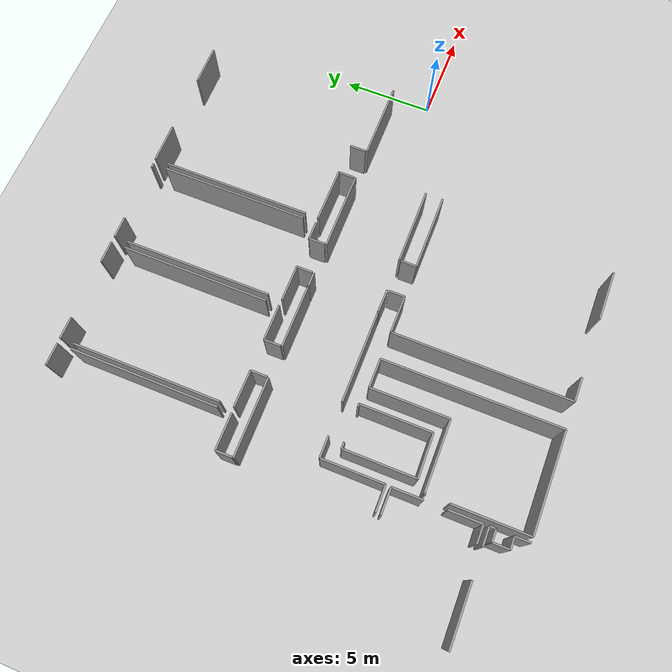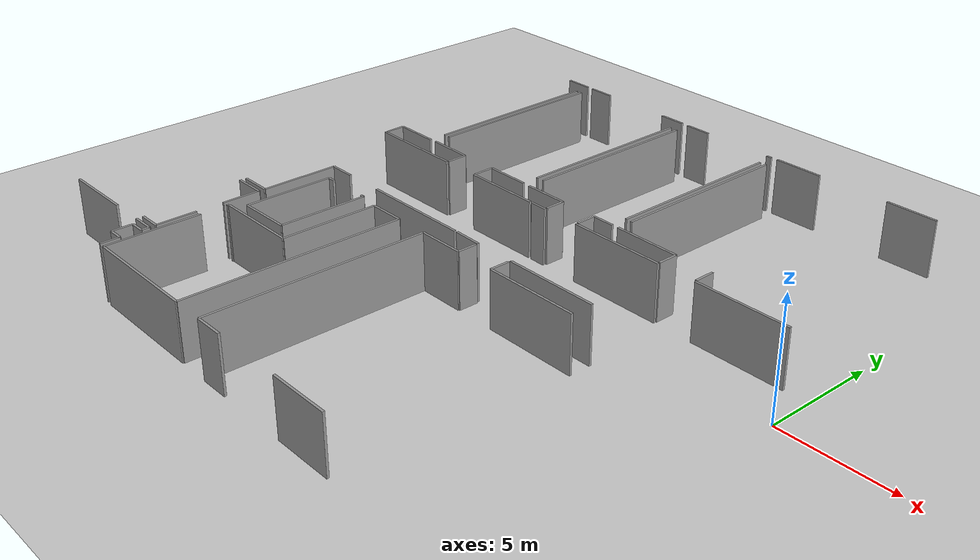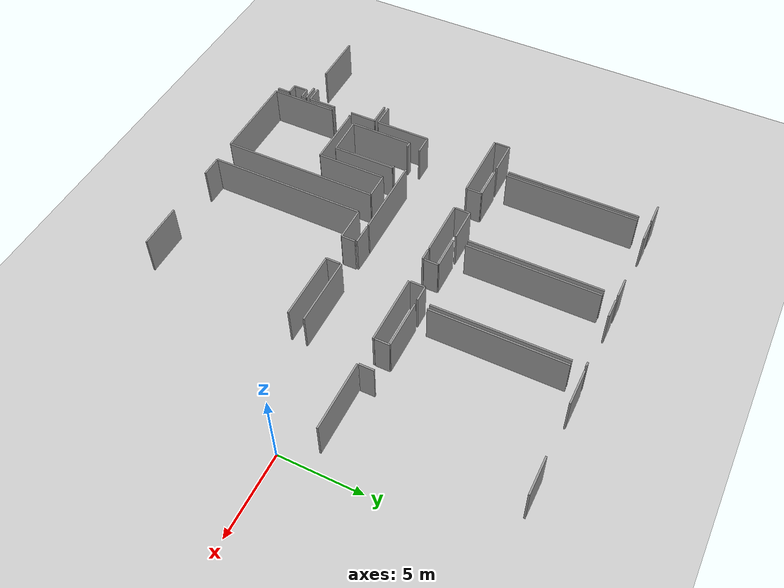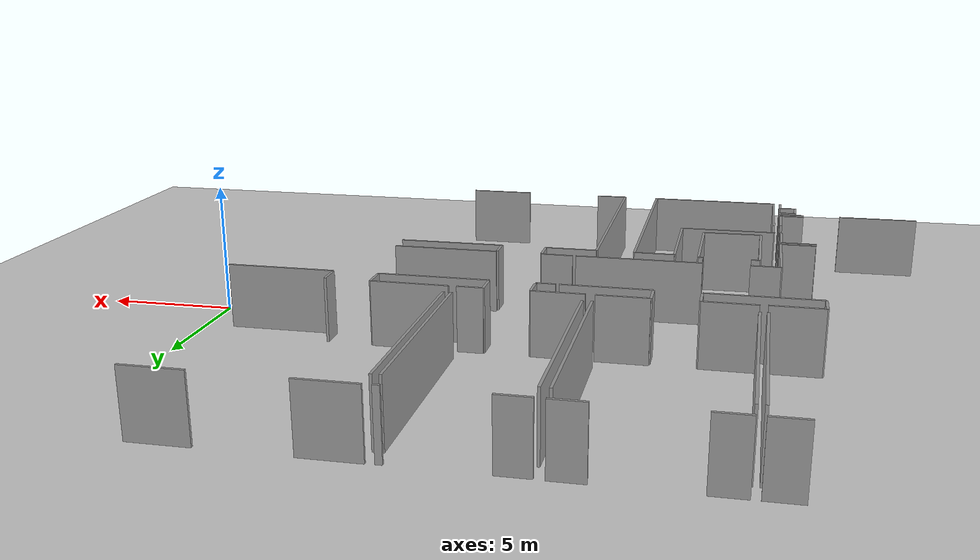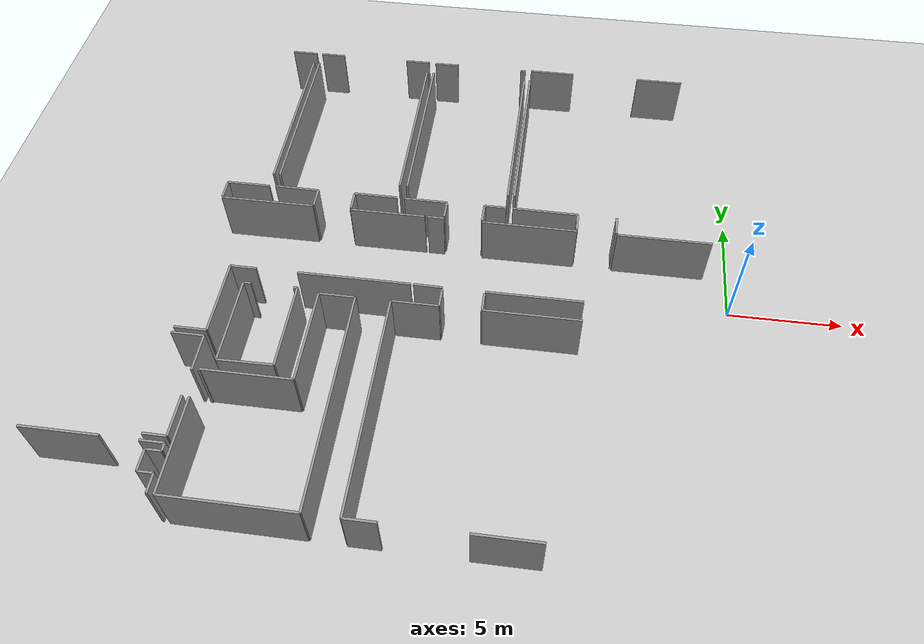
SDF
<sdf version="1.6">
 <world name="default">
  <model name="ground_plane">
   <static>1</static>
   <link name="link">
    <collision name="collision">
     <geometry><plane><normal>0 0 1</normal><size>100 100</size></plane></geometry>
     <surface><friction><ode><mu>100</mu><mu2>50</mu2></ode></friction></surface>
    </collision>
    <visual name="visual">
     <cast_shadows>0</cast_shadows>
     <geometry><plane><normal>0 0 1</normal><size>100 100</size></plane></geometry>
     <material>
      <script><uri>file://media/materials/scripts/gazebo.material</uri><name>Gazebo/Grey</name></script>
     </material>
    </visual>
   </link>
  </model>
  <model name="50052751">
   <static>1</static>
   <link name="Wall_27">
    <collision name="Wall_27_Collision">
     <geometry><box><size>4.26284792091 0.1 2.5</size></box></geometry>
     <pose>2.13142396046 0 1.25 0 0 0</pose>
    </collision>
    <visual name="Wall_27_Visual">
     <pose>2.13142396046 0 1.25 0 0 0</pose>
     <geometry><box><size>4.26284792091 0.1 2.5</size></box></geometry>
     <material>
      <script><uri>file://media/materials/scripts/gazebo.material</uri><name>Gazebo/Grey</name></script>
      <ambient>1 1 1 1</ambient>
     </material>
    </visual>
    <pose>15.7834104306 -10.592477372 0 0 0 0.0</pose>
   </link>
   <link name="Wall_28">
    <collision name="Wall_28_Collision">
     <geometry><box><size>3.40873047088 0.1 2.5</size></box></geometry>
     <pose>1.70436523544 0 1.25 0 0 0</pose>
    </collision>
    <visual name="Wall_28_Visual">
     <pose>1.70436523544 0 1.25 0 0 0</pose>
     <geometry><box><size>3.40873047088 0.1 2.5</size></box></geometry>
     <material>
      <script><uri>file://media/materials/scripts/gazebo.material</uri><name>Gazebo/Grey</name></script>
      <ambient>1 1 1 1</ambient>
     </material>
    </visual>
    <pose>21.7813905925 -10.592477372 0 0 0 0.0</pose>
   </link>
   <link name="Wall_29">
    <collision name="Wall_29_Collision">
     <geometry><box><size>4.91980278667 0.1 2.5</size></box></geometry>
     <pose>2.45990139333 0 1.25 0 0 0</pose>
    </collision>
    <visual name="Wall_29_Visual">
     <pose>2.45990139333 0 1.25 0 0 0</pose>
     <geometry><box><size>4.91980278667 0.1 2.5</size></box></geometry>
     <material>
      <script><uri>file://media/materials/scripts/gazebo.material</uri><name>Gazebo/Grey</name></script>
      <ambient>1 1 1 1</ambient>
     </material>
    </visual>
    <pose>25.1901210634 -14.4466633341 0 0 0 3.14159265359</pose>
   </link>
   <link name="Wall_30">
    <collision name="Wall_30_Collision">
     <geometry><box><size>1.15341380544 0.1 2.5</size></box></geometry>
     <pose>0.57670690272 0 1.25 0 0 0</pose>
    </collision>
    <visual name="Wall_30_Visual">
     <pose>0.57670690272 0 1.25 0 0 0</pose>
     <geometry><box><size>1.15341380544 0.1 2.5</size></box></geometry>
     <material>
      <script><uri>file://media/materials/scripts/gazebo.material</uri><name>Gazebo/Grey</name></script>
      <ambient>1 1 1 1</ambient>
     </material>
    </visual>
    <pose>18.4655320725 -14.4466633341 0 0 0 3.14159265359</pose>
   </link>
   <link name="Wall_31">
    <collision name="Wall_31_Collision">
     <geometry><box><size>3.38728872266 0.1 2.5</size></box></geometry>
     <pose>1.69364436133 0 1.25 0 0 0</pose>
    </collision>
    <visual name="Wall_31_Visual">
     <pose>1.69364436133 0 1.25 0 0 0</pose>
     <geometry><box><size>3.38728872266 0.1 2.5</size></box></geometry>
     <material>
      <script><uri>file://media/materials/scripts/gazebo.material</uri><name>Gazebo/Grey</name></script>
      <ambient>1 1 1 1</ambient>
     </material>
    </visual>
    <pose>17.3121182671 -14.4466633341 0 0 0 -1.57079632679</pose>
   </link>
   <link name="Wall_32">
    <collision name="Wall_32_Collision">
     <geometry><box><size>1.38166058093 0.1 2.5</size></box></geometry>
     <pose>0.690830290466 0 1.25 0 0 0</pose>
    </collision>
    <visual name="Wall_32_Visual">
     <pose>0.690830290466 0 1.25 0 0 0</pose>
     <geometry><box><size>1.38166058093 0.1 2.5</size></box></geometry>
     <material>
      <script><uri>file://media/materials/scripts/gazebo.material</uri><name>Gazebo/Grey</name></script>
      <ambient>1 1 1 1</ambient>
     </material>
    </visual>
    <pose>17.3121182671 -17.8339520568 0 0 0 3.14159265359</pose>
   </link>
   <link name="Wall_38">
    <collision name="Wall_38_Collision">
     <geometry><box><size>1.39282551492 0.1 2.5</size></box></geometry>
     <pose>0.69641275746 0 1.25 0 0 0</pose>
    </collision>
    <visual name="Wall_38_Visual">
     <pose>0.69641275746 0 1.25 0 0 0</pose>
     <geometry><box><size>1.39282551492 0.1 2.5</size></box></geometry>
     <material>
      <script><uri>file://media/materials/scripts/gazebo.material</uri><name>Gazebo/Grey</name></script>
      <ambient>1 1 1 1</ambient>
     </material>
    </visual>
    <pose>15.8975972555 -18.1100304244 0 0 0 0.0</pose>
   </link>
   <link name="Wall_39">
    <collision name="Wall_39_Collision">
     <geometry><box><size>1.64505152363 0.1 2.5</size></box></geometry>
     <pose>0.822525761816 0 1.25 0 0 0</pose>
    </collision>
    <visual name="Wall_39_Visual">
     <pose>0.822525761816 0 1.25 0 0 0</pose>
     <geometry><box><size>1.64505152363 0.1 2.5</size></box></geometry>
     <material>
      <script><uri>file://media/materials/scripts/gazebo.material</uri><name>Gazebo/Grey</name></script>
      <ambient>1 1 1 1</ambient>
     </material>
    </visual>
    <pose>17.2904227704 -18.1100304244 0 0 0 -1.57079632679</pose>
   </link>
   <link name="Wall_40">
    <collision name="Wall_40_Collision">
     <geometry><box><size>1.76824642024 0.1 2.5</size></box></geometry>
     <pose>0.884123210122 0 1.25 0 0 0</pose>
    </collision>
    <visual name="Wall_40_Visual">
     <pose>0.884123210122 0 1.25 0 0 0</pose>
     <geometry><box><size>1.76824642024 0.1 2.5</size></box></geometry>
     <material>
      <script><uri>file://media/materials/scripts/gazebo.material</uri><name>Gazebo/Grey</name></script>
      <ambient>1 1 1 1</ambient>
     </material>
    </visual>
    <pose>17.2904227704 -20.9435130465 0 0 0 -1.57079632679</pose>
   </link>
   <link name="Wall_41">
    <collision name="Wall_41_Collision">
     <geometry><box><size>0.983275436384 0.1 2.5</size></box></geometry>
     <pose>0.491637718192 0 1.25 0 0 0</pose>
    </collision>
    <visual name="Wall_41_Visual">
     <pose>0.491637718192 0 1.25 0 0 0</pose>
     <geometry><box><size>0.983275436384 0.1 2.5</size></box></geometry>
     <material>
      <script><uri>file://media/materials/scripts/gazebo.material</uri><name>Gazebo/Grey</name></script>
      <ambient>1 1 1 1</ambient>
     </material>
    </visual>
    <pose>17.2904227704 -22.7117594667 0 0 0 3.14159265359</pose>
   </link>
   <link name="Wall_44">
    <collision name="Wall_44_Collision">
     <geometry><box><size>0.812375821828 0.1 2.5</size></box></geometry>
     <pose>0.406187910914 0 1.25 0 0 0</pose>
    </collision>
    <visual name="Wall_44_Visual">
     <pose>0.406187910914 0 1.25 0 0 0</pose>
     <geometry><box><size>0.812375821828 0.1 2.5</size></box></geometry>
     <material>
      <script><uri>file://media/materials/scripts/gazebo.material</uri><name>Gazebo/Grey</name></script>
      <ambient>1 1 1 1</ambient>
     </material>
    </visual>
    <pose>17.3048864349 -25.0432006821 0 0 0 1.57079632679</pose>
   </link>
   <link name="Wall_45">
    <collision name="Wall_45_Collision">
     <geometry><box><size>0.652768015509 0.1 2.5</size></box></geometry>
     <pose>0.326384007755 0 1.25 0 0 0</pose>
    </collision>
    <visual name="Wall_45_Visual">
     <pose>0.326384007755 0 1.25 0 0 0</pose>
     <geometry><box><size>0.652768015509 0.1 2.5</size></box></geometry>
     <material>
      <script><uri>file://media/materials/scripts/gazebo.material</uri><name>Gazebo/Grey</name></script>
      <ambient>1 1 1 1</ambient>
     </material>
    </visual>
    <pose>17.3048864349 -24.2308248602 0 0 0 3.14159265359</pose>
   </link>
   <link name="Wall_46">
    <collision name="Wall_46_Collision">
     <geometry><box><size>0.899538431479 0.1 2.5</size></box></geometry>
     <pose>0.44976921574 0 1.25 0 0 0</pose>
    </collision>
    <visual name="Wall_46_Visual">
     <pose>0.44976921574 0 1.25 0 0 0</pose>
     <geometry><box><size>0.899538431479 0.1 2.5</size></box></geometry>
     <material>
      <script><uri>file://media/materials/scripts/gazebo.material</uri><name>Gazebo/Grey</name></script>
      <ambient>1 1 1 1</ambient>
     </material>
    </visual>
    <pose>16.6521184193 -24.2308248602 0 0 0 1.57079632679</pose>
   </link>
   <link name="Wall_47">
    <collision name="Wall_47_Collision">
     <geometry><box><size>0.652768015509 0.1 2.5</size></box></geometry>
     <pose>0.326384007755 0 1.25 0 0 0</pose>
    </collision>
    <visual name="Wall_47_Visual">
     <pose>0.326384007755 0 1.25 0 0 0</pose>
     <geometry><box><size>0.652768015509 0.1 2.5</size></box></geometry>
     <material>
      <script><uri>file://media/materials/scripts/gazebo.material</uri><name>Gazebo/Grey</name></script>
      <ambient>1 1 1 1</ambient>
     </material>
    </visual>
    <pose>16.6521184193 -23.3312864288 0 0 0 0.0</pose>
   </link>
   <link name="Wall_48">
    <collision name="Wall_48_Collision">
     <geometry><box><size>0.333679277121 0.1 2.5</size></box></geometry>
     <pose>0.166839638561 0 1.25 0 0 0</pose>
    </collision>
    <visual name="Wall_48_Visual">
     <pose>0.166839638561 0 1.25 0 0 0</pose>
     <geometry><box><size>0.333679277121 0.1 2.5</size></box></geometry>
     <material>
      <script><uri>file://media/materials/scripts/gazebo.material</uri><name>Gazebo/Grey</name></script>
      <ambient>1 1 1 1</ambient>
     </material>
    </visual>
    <pose>17.3048864349 -23.3312864288 0 0 0 1.57079632679</pose>
   </link>
   <link name="Wall_49">
    <collision name="Wall_49_Collision">
     <geometry><box><size>1.00865028636 0.1 2.5</size></box></geometry>
     <pose>0.504325143178 0 1.25 0 0 0</pose>
    </collision>
    <visual name="Wall_49_Visual">
     <pose>0.504325143178 0 1.25 0 0 0</pose>
     <geometry><box><size>1.00865028636 0.1 2.5</size></box></geometry>
     <material>
      <script><uri>file://media/materials/scripts/gazebo.material</uri><name>Gazebo/Grey</name></script>
      <ambient>1 1 1 1</ambient>
     </material>
    </visual>
    <pose>17.3048864349 -22.9976071516 0 0 0 3.14159265359</pose>
   </link>
   <link name="Wall_50">
    <collision name="Wall_50_Collision">
     <geometry><box><size>3.25064515556 0.1 2.5</size></box></geometry>
     <pose>1.62532257778 0 1.25 0 0 0</pose>
    </collision>
    <visual name="Wall_50_Visual">
     <pose>1.62532257778 0 1.25 0 0 0</pose>
     <geometry><box><size>3.25064515556 0.1 2.5</size></box></geometry>
     <material>
      <script><uri>file://media/materials/scripts/gazebo.material</uri><name>Gazebo/Grey</name></script>
      <ambient>1 1 1 1</ambient>
     </material>
    </visual>
    <pose>14.7403772225 -22.9976071516 0 0 0 3.14159265359</pose>
   </link>
   <link name="Wall_80">
    <collision name="Wall_80_Collision">
     <geometry><box><size>1.23004585235 0.1 2.5</size></box></geometry>
     <pose>0.615022926177 0 1.25 0 0 0</pose>
    </collision>
    <visual name="Wall_80_Visual">
     <pose>0.615022926177 0 1.25 0 0 0</pose>
     <geometry><box><size>1.23004585235 0.1 2.5</size></box></geometry>
     <material>
      <script><uri>file://media/materials/scripts/gazebo.material</uri><name>Gazebo/Grey</name></script>
      <ambient>1 1 1 1</ambient>
     </material>
    </visual>
    <pose>16.5360284807 -0.0204267542268 0 0 0 0.0</pose>
   </link>
   <link name="Wall_81">
    <collision name="Wall_81_Collision">
     <geometry><box><size>8.08988279357 0.1 2.5</size></box></geometry>
     <pose>4.04494139678 0 1.25 0 0 0</pose>
    </collision>
    <visual name="Wall_81_Visual">
     <pose>4.04494139678 0 1.25 0 0 0</pose>
     <geometry><box><size>8.08988279357 0.1 2.5</size></box></geometry>
     <material>
      <script><uri>file://media/materials/scripts/gazebo.material</uri><name>Gazebo/Grey</name></script>
      <ambient>1 1 1 1</ambient>
     </material>
    </visual>
    <pose>17.7660743331 -0.771141690625 0 0 0 -1.57079632679</pose>
   </link>
   <link name="Wall_82">
    <collision name="Wall_82_Collision">
     <geometry><box><size>1.96883460927 0.1 2.5</size></box></geometry>
     <pose>0.984417304633 0 1.25 0 0 0</pose>
    </collision>
    <visual name="Wall_82_Visual">
     <pose>0.984417304633 0 1.25 0 0 0</pose>
     <geometry><box><size>1.96883460927 0.1 2.5</size></box></geometry>
     <material>
      <script><uri>file://media/materials/scripts/gazebo.material</uri><name>Gazebo/Grey</name></script>
      <ambient>1 1 1 1</ambient>
     </material>
    </visual>
    <pose>17.7660743331 -9.63432303707 0 0 0 3.14159265359</pose>
   </link>
   <link name="Wall_83">
    <collision name="Wall_83_Collision">
     <geometry><box><size>0.89002286274 0.1 2.5</size></box></geometry>
     <pose>0.44501143137 0 1.25 0 0 0</pose>
    </collision>
    <visual name="Wall_83_Visual">
     <pose>0.44501143137 0 1.25 0 0 0</pose>
     <geometry><box><size>0.89002286274 0.1 2.5</size></box></geometry>
     <material>
      <script><uri>file://media/materials/scripts/gazebo.material</uri><name>Gazebo/Grey</name></script>
      <ambient>1 1 1 1</ambient>
     </material>
    </visual>
    <pose>15.7972397238 -9.63432303707 0 0 0 -1.57079632679</pose>
   </link>
   <link name="Wall_86">
    <collision name="Wall_86_Collision">
     <geometry><box><size>8.08772593132 0.1 2.5</size></box></geometry>
     <pose>4.04386296566 0 1.25 0 0 0</pose>
    </collision>
    <visual name="Wall_86_Visual">
     <pose>4.04386296566 0 1.25 0 0 0</pose>
     <geometry><box><size>8.08772593132 0.1 2.5</size></box></geometry>
     <material>
      <script><uri>file://media/materials/scripts/gazebo.material</uri><name>Gazebo/Grey</name></script>
      <ambient>1 1 1 1</ambient>
     </material>
    </visual>
    <pose>18.0520488923 -8.85937511894 0 0 0 1.57079632679</pose>
   </link>
   <link name="Wall_87">
    <collision name="Wall_87_Collision">
     <geometry><box><size>1.1896998409 0.1 2.5</size></box></geometry>
     <pose>0.59484992045 0 1.25 0 0 0</pose>
    </collision>
    <visual name="Wall_87_Visual">
     <pose>0.59484992045 0 1.25 0 0 0</pose>
     <geometry><box><size>1.1896998409 0.1 2.5</size></box></geometry>
     <material>
      <script><uri>file://media/materials/scripts/gazebo.material</uri><name>Gazebo/Grey</name></script>
      <ambient>1 1 1 1</ambient>
     </material>
    </visual>
    <pose>18.0520488923 -0.016747400981 0 0 0 0.0</pose>
   </link>
   <link name="Wall_88">
    <collision name="Wall_88_Collision">
     <geometry><box><size>1.19693167314 0.1 2.5</size></box></geometry>
     <pose>0.598465836571 0 1.25 0 0 0</pose>
    </collision>
    <visual name="Wall_88_Visual">
     <pose>0.598465836571 0 1.25 0 0 0</pose>
     <geometry><box><size>1.19693167314 0.1 2.5</size></box></geometry>
     <material>
      <script><uri>file://media/materials/scripts/gazebo.material</uri><name>Gazebo/Grey</name></script>
      <ambient>1 1 1 1</ambient>
     </material>
    </visual>
    <pose>22.5423823432 -0.016747400981 0 0 0 0.0</pose>
   </link>
   <link name="Wall_89">
    <collision name="Wall_89_Collision">
     <geometry><box><size>8.08214346433 0.1 2.5</size></box></geometry>
     <pose>4.04107173216 0 1.25 0 0 0</pose>
    </collision>
    <visual name="Wall_89_Visual">
     <pose>4.04107173216 0 1.25 0 0 0</pose>
     <geometry><box><size>8.08214346433 0.1 2.5</size></box></geometry>
     <material>
      <script><uri>file://media/materials/scripts/gazebo.material</uri><name>Gazebo/Grey</name></script>
      <ambient>1 1 1 1</ambient>
     </material>
    </visual>
    <pose>23.7393140163 -0.785605355108 0 0 0 -1.57079632679</pose>
   </link>
   <link name="Wall_90">
    <collision name="Wall_90_Collision">
     <geometry><box><size>1.95906529203 0.1 2.5</size></box></geometry>
     <pose>0.979532646013 0 1.25 0 0 0</pose>
    </collision>
    <visual name="Wall_90_Visual">
     <pose>0.979532646013 0 1.25 0 0 0</pose>
     <geometry><box><size>1.95906529203 0.1 2.5</size></box></geometry>
     <material>
      <script><uri>file://media/materials/scripts/gazebo.material</uri><name>Gazebo/Grey</name></script>
      <ambient>1 1 1 1</ambient>
     </material>
    </visual>
    <pose>23.7393140163 -9.61123192359 0 0 0 3.14159265359</pose>
   </link>
   <link name="Wall_91">
    <collision name="Wall_91_Collision">
     <geometry><box><size>0.918188946208 0.1 2.5</size></box></geometry>
     <pose>0.459094473104 0 1.25 0 0 0</pose>
    </collision>
    <visual name="Wall_91_Visual">
     <pose>0.459094473104 0 1.25 0 0 0</pose>
     <geometry><box><size>0.918188946208 0.1 2.5</size></box></geometry>
     <material>
      <script><uri>file://media/materials/scripts/gazebo.material</uri><name>Gazebo/Grey</name></script>
      <ambient>1 1 1 1</ambient>
     </material>
    </visual>
    <pose>21.7802487243 -9.61123192359 0 0 0 -1.57079632679</pose>
   </link>
   <link name="Wall_92">
    <collision name="Wall_92_Collision">
     <geometry><box><size>0.904867149973 0.1 2.5</size></box></geometry>
     <pose>0.452433574986 0 1.25 0 0 0</pose>
    </collision>
    <visual name="Wall_92_Visual">
     <pose>0.452433574986 0 1.25 0 0 0</pose>
     <geometry><box><size>0.904867149973 0.1 2.5</size></box></geometry>
     <material>
      <script><uri>file://media/materials/scripts/gazebo.material</uri><name>Gazebo/Grey</name></script>
      <ambient>1 1 1 1</ambient>
     </material>
    </visual>
    <pose>20.060214519 -10.5294208698 0 0 0 1.57079632679</pose>
   </link>
   <link name="Wall_93">
    <collision name="Wall_93_Collision">
     <geometry><box><size>2.0082464405 0.1 2.5</size></box></geometry>
     <pose>1.00412322025 0 1.25 0 0 0</pose>
    </collision>
    <visual name="Wall_93_Visual">
     <pose>1.00412322025 0 1.25 0 0 0</pose>
     <geometry><box><size>2.0082464405 0.1 2.5</size></box></geometry>
     <material>
      <script><uri>file://media/materials/scripts/gazebo.material</uri><name>Gazebo/Grey</name></script>
      <ambient>1 1 1 1</ambient>
     </material>
    </visual>
    <pose>20.060214519 -9.62455371983 0 0 0 3.13262145126</pose>
   </link>
   <link name="Wall_94">
    <collision name="Wall_94_Collision">
     <geometry><box><size>8.07338914109 0.1 2.5</size></box></geometry>
     <pose>4.03669457054 0 1.25 0 0 0</pose>
    </collision>
    <visual name="Wall_94_Visual">
     <pose>4.03669457054 0 1.25 0 0 0</pose>
     <geometry><box><size>8.07338914109 0.1 2.5</size></box></geometry>
     <material>
      <script><uri>file://media/materials/scripts/gazebo.material</uri><name>Gazebo/Grey</name></script>
      <ambient>1 1 1 1</ambient>
     </material>
    </visual>
    <pose>24.0846657244 -8.8589944962 0 0 0 1.57079632679</pose>
   </link>
   <link name="Wall_95">
    <collision name="Wall_95_Collision">
     <geometry><box><size>1.17802740991 0.1 2.5</size></box></geometry>
     <pose>0.589013704956 0 1.25 0 0 0</pose>
    </collision>
    <visual name="Wall_95_Visual">
     <pose>0.589013704956 0 1.25 0 0 0</pose>
     <geometry><box><size>1.17802740991 0.1 2.5</size></box></geometry>
     <material>
      <script><uri>file://media/materials/scripts/gazebo.material</uri><name>Gazebo/Grey</name></script>
      <ambient>1 1 1 1</ambient>
     </material>
    </visual>
    <pose>24.0846657244 -0.0312110654646 0 0 0 0.0</pose>
   </link>
   <link name="Wall_96">
    <collision name="Wall_96_Collision">
     <geometry><box><size>0.239284835228 0.1 2.5</size></box></geometry>
     <pose>0.119642417614 0 1.25 0 0 0</pose>
    </collision>
    <visual name="Wall_96_Visual">
     <pose>0.119642417614 0 1.25 0 0 0</pose>
     <geometry><box><size>0.239284835228 0.1 2.5</size></box></geometry>
     <material>
      <script><uri>file://media/materials/scripts/gazebo.material</uri><name>Gazebo/Grey</name></script>
      <ambient>1 1 1 1</ambient>
     </material>
    </visual>
    <pose>28.5270407089 -0.0312110654646 0 0 0 0.0</pose>
   </link>
   <link name="Wall_97">
    <collision name="Wall_97_Collision">
     <geometry><box><size>8.08480782357 0.1 2.5</size></box></geometry>
     <pose>4.04240391179 0 1.25 0 0 0</pose>
    </collision>
    <visual name="Wall_97_Visual">
     <pose>4.04240391179 0 1.25 0 0 0</pose>
     <geometry><box><size>8.08480782357 0.1 2.5</size></box></geometry>
     <material>
      <script><uri>file://media/materials/scripts/gazebo.material</uri><name>Gazebo/Grey</name></script>
      <ambient>1 1 1 1</ambient>
     </material>
    </visual>
    <pose>28.7663255441 -0.785605355108 0 0 0 -1.57079632679</pose>
   </link>
   <link name="Wall_98">
    <collision name="Wall_98_Collision">
     <geometry><box><size>0.983402310634 0.1 2.5</size></box></geometry>
     <pose>0.491701155317 0 1.25 0 0 0</pose>
    </collision>
    <visual name="Wall_98_Visual">
     <pose>0.491701155317 0 1.25 0 0 0</pose>
     <geometry><box><size>0.983402310634 0.1 2.5</size></box></geometry>
     <material>
      <script><uri>file://media/materials/scripts/gazebo.material</uri><name>Gazebo/Grey</name></script>
      <ambient>1 1 1 1</ambient>
     </material>
    </visual>
    <pose>28.7663255441 -9.61478440259 0 0 0 3.14159265359</pose>
   </link>
   <link name="Wall_99">
    <collision name="Wall_99_Collision">
     <geometry><box><size>0.883044778998 0.1 2.5</size></box></geometry>
     <pose>0.441522389499 0 1.25 0 0 0</pose>
    </collision>
    <visual name="Wall_99_Visual">
     <pose>0.441522389499 0 1.25 0 0 0</pose>
     <geometry><box><size>0.883044778998 0.1 2.5</size></box></geometry>
     <material>
      <script><uri>file://media/materials/scripts/gazebo.material</uri><name>Gazebo/Grey</name></script>
      <ambient>1 1 1 1</ambient>
     </material>
    </visual>
    <pose>27.7829232335 -9.61478440259 0 0 0 -1.57079632679</pose>
   </link>
   <link name="Wall_100">
    <collision name="Wall_100_Collision">
     <geometry><box><size>0.869469234263 0.1 2.5</size></box></geometry>
     <pose>0.434734617132 0 1.25 0 0 0</pose>
    </collision>
    <visual name="Wall_100_Visual">
     <pose>0.434734617132 0 1.25 0 0 0</pose>
     <geometry><box><size>0.869469234263 0.1 2.5</size></box></geometry>
     <material>
      <script><uri>file://media/materials/scripts/gazebo.material</uri><name>Gazebo/Grey</name></script>
      <ambient>1 1 1 1</ambient>
     </material>
    </visual>
    <pose>26.0533734594 -10.4978291816 0 0 0 1.57079632679</pose>
   </link>
   <link name="Wall_101">
    <collision name="Wall_101_Collision">
     <geometry><box><size>1.96870865487 0.1 2.5</size></box></geometry>
     <pose>0.984354327434 0 1.25 0 0 0</pose>
    </collision>
    <visual name="Wall_101_Visual">
     <pose>0.984354327434 0 1.25 0 0 0</pose>
     <geometry><box><size>1.96870865487 0.1 2.5</size></box></geometry>
     <material>
      <script><uri>file://media/materials/scripts/gazebo.material</uri><name>Gazebo/Grey</name></script>
      <ambient>1 1 1 1</ambient>
     </material>
    </visual>
    <pose>26.0533734594 -9.62835994732 0 0 0 3.14062597219</pose>
   </link>
   <link name="Wall_102">
    <collision name="Wall_102_Collision">
     <geometry><box><size>8.11703388304 0.1 2.5</size></box></geometry>
     <pose>4.05851694152 0 1.25 0 0 0</pose>
    </collision>
    <visual name="Wall_102_Visual">
     <pose>4.05851694152 0 1.25 0 0 0</pose>
     <geometry><box><size>8.11703388304 0.1 2.5</size></box></geometry>
     <material>
      <script><uri>file://media/materials/scripts/gazebo.material</uri><name>Gazebo/Grey</name></script>
      <ambient>1 1 1 1</ambient>
     </material>
    </visual>
    <pose>29.0637187858 -8.88449622042 0 0 0 1.57079632679</pose>
   </link>
   <link name="Wall_103">
    <collision name="Wall_103_Collision">
     <geometry><box><size>2.17627400778 0.1 2.5</size></box></geometry>
     <pose>1.08813700389 0 1.25 0 0 0</pose>
    </collision>
    <visual name="Wall_103_Visual">
     <pose>1.08813700389 0 1.25 0 0 0</pose>
     <geometry><box><size>2.17627400778 0.1 2.5</size></box></geometry>
     <material>
      <script><uri>file://media/materials/scripts/gazebo.material</uri><name>Gazebo/Grey</name></script>
      <ambient>1 1 1 1</ambient>
     </material>
    </visual>
    <pose>29.0637187858 -0.0 0 0 0 0.0</pose>
   </link>
   <link name="Wall_104">
    <collision name="Wall_104_Collision">
     <geometry><box><size>2.23425553996 0.1 2.5</size></box></geometry>
     <pose>1.11712776998 0 1.25 0 0 0</pose>
    </collision>
    <visual name="Wall_104_Visual">
     <pose>1.11712776998 0 1.25 0 0 0</pose>
     <geometry><box><size>2.23425553996 0.1 2.5</size></box></geometry>
     <material>
      <script><uri>file://media/materials/scripts/gazebo.material</uri><name>Gazebo/Grey</name></script>
      <ambient>1 1 1 1</ambient>
     </material>
    </visual>
    <pose>34.4971085358 -0.0 0 0 0 0.0</pose>
   </link>
   <link name="Wall_107">
    <collision name="Wall_107_Collision">
     <geometry><box><size>0.884947892746 0.1 2.5</size></box></geometry>
     <pose>0.442473946373 0 1.25 0 0 0</pose>
    </collision>
    <visual name="Wall_107_Visual">
     <pose>0.442473946373 0 1.25 0 0 0</pose>
     <geometry><box><size>0.884947892746 0.1 2.5</size></box></geometry>
     <material>
      <script><uri>file://media/materials/scripts/gazebo.material</uri><name>Gazebo/Grey</name></script>
      <ambient>1 1 1 1</ambient>
     </material>
    </visual>
    <pose>33.7716415752 -9.62835994732 0 0 0 -1.57079632679</pose>
   </link>
   <link name="Wall_108">
    <collision name="Wall_108_Collision">
     <geometry><box><size>0.885582263995 0.1 2.5</size></box></geometry>
     <pose>0.442791131997 0 1.25 0 0 0</pose>
    </collision>
    <visual name="Wall_108_Visual">
     <pose>0.442791131997 0 1.25 0 0 0</pose>
     <geometry><box><size>0.885582263995 0.1 2.5</size></box></geometry>
     <material>
      <script><uri>file://media/materials/scripts/gazebo.material</uri><name>Gazebo/Grey</name></script>
      <ambient>1 1 1 1</ambient>
     </material>
    </visual>
    <pose>32.0186200649 -10.5133078401 0 0 0 1.57079632679</pose>
   </link>
   <link name="Wall_109">
    <collision name="Wall_109_Collision">
     <geometry><box><size>2.95497188173 0.1 2.5</size></box></geometry>
     <pose>1.47748594086 0 1.25 0 0 0</pose>
    </collision>
    <visual name="Wall_109_Visual">
     <pose>1.47748594086 0 1.25 0 0 0</pose>
     <geometry><box><size>2.95497188173 0.1 2.5</size></box></geometry>
     <material>
      <script><uri>file://media/materials/scripts/gazebo.material</uri><name>Gazebo/Grey</name></script>
      <ambient>1 1 1 1</ambient>
     </material>
    </visual>
    <pose>32.0186200649 -9.62772557607 0 0 0 3.13467992557</pose>
   </link>
   <link name="Wall_162">
    <collision name="Wall_162_Collision">
     <geometry><box><size>3.90404754232 0.1 2.5</size></box></geometry>
     <pose>1.95202377116 0 1.25 0 0 0</pose>
    </collision>
    <visual name="Wall_162_Visual">
     <pose>1.95202377116 0 1.25 0 0 0</pose>
     <geometry><box><size>3.90404754232 0.1 2.5</size></box></geometry>
     <material>
      <script><uri>file://media/materials/scripts/gazebo.material</uri><name>Gazebo/Grey</name></script>
      <ambient>1 1 1 1</ambient>
     </material>
    </visual>
    <pose>18.1171353824 -19.16194483 0 0 0 1.57079632679</pose>
   </link>
   <link name="Wall_163">
    <collision name="Wall_163_Collision">
     <geometry><box><size>0.335709265119 0.1 2.5</size></box></geometry>
     <pose>0.167854632559 0 1.25 0 0 0</pose>
    </collision>
    <visual name="Wall_163_Visual">
     <pose>0.167854632559 0 1.25 0 0 0</pose>
     <geometry><box><size>0.335709265119 0.1 2.5</size></box></geometry>
     <material>
      <script><uri>file://media/materials/scripts/gazebo.material</uri><name>Gazebo/Grey</name></script>
      <ambient>1 1 1 1</ambient>
     </material>
    </visual>
    <pose>18.1171353824 -15.2578972877 0 0 0 0.0</pose>
   </link>
   <link name="Wall_164">
    <collision name="Wall_164_Collision">
     <geometry><box><size>0.166839638561 0.1 2.5</size></box></geometry>
     <pose>0.0834198192803 0 1.25 0 0 0</pose>
    </collision>
    <visual name="Wall_164_Visual">
     <pose>0.0834198192803 0 1.25 0 0 0</pose>
     <geometry><box><size>0.166839638561 0.1 2.5</size></box></geometry>
     <material>
      <script><uri>file://media/materials/scripts/gazebo.material</uri><name>Gazebo/Grey</name></script>
      <ambient>1 1 1 1</ambient>
     </material>
    </visual>
    <pose>20.3048280727 -15.2578972877 0 0 0 0.0</pose>
   </link>
   <link name="Wall_165">
    <collision name="Wall_165_Collision">
     <geometry><box><size>3.86814212961 0.1 2.5</size></box></geometry>
     <pose>1.9340710648 0 1.25 0 0 0</pose>
    </collision>
    <visual name="Wall_165_Visual">
     <pose>1.9340710648 0 1.25 0 0 0</pose>
     <geometry><box><size>3.86814212961 0.1 2.5</size></box></geometry>
     <material>
      <script><uri>file://media/materials/scripts/gazebo.material</uri><name>Gazebo/Grey</name></script>
      <ambient>1 1 1 1</ambient>
     </material>
    </visual>
    <pose>20.4716677113 -15.2578972877 0 0 0 -1.57079632679</pose>
   </link>
   <link name="Wall_166">
    <collision name="Wall_166_Collision">
     <geometry><box><size>2.3548060825 0.1 2.5</size></box></geometry>
     <pose>1.17740304125 0 1.25 0 0 0</pose>
    </collision>
    <visual name="Wall_166_Visual">
     <pose>1.17740304125 0 1.25 0 0 0</pose>
     <geometry><box><size>2.3548060825 0.1 2.5</size></box></geometry>
     <material>
      <script><uri>file://media/materials/scripts/gazebo.material</uri><name>Gazebo/Grey</name></script>
      <ambient>1 1 1 1</ambient>
     </material>
    </visual>
    <pose>20.4716677113 -19.1260394173 0 0 0 -3.12634434741</pose>
   </link>
   <link name="Wall_167">
    <collision name="Wall_167_Collision">
     <geometry><box><size>0.740691870659 0.1 2.5</size></box></geometry>
     <pose>0.37034593533 0 1.25 0 0 0</pose>
    </collision>
    <visual name="Wall_167_Visual">
     <pose>0.37034593533 0 1.25 0 0 0</pose>
     <geometry><box><size>0.740691870659 0.1 2.5</size></box></geometry>
     <material>
      <script><uri>file://media/materials/scripts/gazebo.material</uri><name>Gazebo/Grey</name></script>
      <ambient>1 1 1 1</ambient>
     </material>
    </visual>
    <pose>25.3126815888 -10.5931117432 0 0 0 0.0</pose>
   </link>
   <link name="Wall_168">
    <collision name="Wall_168_Collision">
     <geometry><box><size>4.24584677143 0.1 2.5</size></box></geometry>
     <pose>2.12292338572 0 1.25 0 0 0</pose>
    </collision>
    <visual name="Wall_168_Visual">
     <pose>2.12292338572 0 1.25 0 0 0</pose>
     <geometry><box><size>4.24584677143 0.1 2.5</size></box></geometry>
     <material>
      <script><uri>file://media/materials/scripts/gazebo.material</uri><name>Gazebo/Grey</name></script>
      <ambient>1 1 1 1</ambient>
     </material>
    </visual>
    <pose>27.7906625627 -10.5931117432 0 0 0 0.0</pose>
   </link>
   <link name="Wall_169">
    <collision name="Wall_169_Collision">
     <geometry><box><size>4.17428969451 0.1 2.5</size></box></geometry>
     <pose>2.08714484726 0 1.25 0 0 0</pose>
    </collision>
    <visual name="Wall_169_Visual">
     <pose>2.08714484726 0 1.25 0 0 0</pose>
     <geometry><box><size>4.17428969451 0.1 2.5</size></box></geometry>
     <material>
      <script><uri>file://media/materials/scripts/gazebo.material</uri><name>Gazebo/Grey</name></script>
      <ambient>1 1 1 1</ambient>
     </material>
    </visual>
    <pose>33.8113532154 -10.5931117432 0 0 0 0.0</pose>
   </link>
   <link name="Wall_185">
    <collision name="Wall_185_Collision">
     <geometry><box><size>4.17327470051 0.1 2.5</size></box></geometry>
     <pose>2.08663735026 0 1.25 0 0 0</pose>
    </collision>
    <visual name="Wall_185_Visual">
     <pose>2.08663735026 0 1.25 0 0 0</pose>
     <geometry><box><size>4.17327470051 0.1 2.5</size></box></geometry>
     <material>
      <script><uri>file://media/materials/scripts/gazebo.material</uri><name>Gazebo/Grey</name></script>
      <ambient>1 1 1 1</ambient>
     </material>
    </visual>
    <pose>32.5558056388 -14.4655675973 0 0 0 3.14159265359</pose>
   </link>
   <link name="Wall_186">
    <collision name="Wall_186_Collision">
     <geometry><box><size>1.24738762087 0.1 2.5</size></box></geometry>
     <pose>0.623693810437 0 1.25 0 0 0</pose>
    </collision>
    <visual name="Wall_186_Visual">
     <pose>0.623693810437 0 1.25 0 0 0</pose>
     <geometry><box><size>1.24738762087 0.1 2.5</size></box></geometry>
     <material>
      <script><uri>file://media/materials/scripts/gazebo.material</uri><name>Gazebo/Grey</name></script>
      <ambient>1 1 1 1</ambient>
     </material>
    </visual>
    <pose>26.5598554649 -14.4655675973 0 0 0 3.12308001799</pose>
   </link>
   <link name="Wall_187">
    <collision name="Wall_187_Collision">
     <geometry><box><size>4.09080643811 0.1 2.5</size></box></geometry>
     <pose>2.04540321905 0 1.25 0 0 0</pose>
    </collision>
    <visual name="Wall_187_Visual">
     <pose>2.04540321905 0 1.25 0 0 0</pose>
     <geometry><box><size>4.09080643811 0.1 2.5</size></box></geometry>
     <material>
      <script><uri>file://media/materials/scripts/gazebo.material</uri><name>Gazebo/Grey</name></script>
      <ambient>1 1 1 1</ambient>
     </material>
    </visual>
    <pose>17.5927641078 -25.0409169456 0 0 0 1.57079632679</pose>
   </link>
   <link name="Wall_188">
    <collision name="Wall_188_Collision">
     <geometry><box><size>0.0834832564052 0.1 2.5</size></box></geometry>
     <pose>0.0417416282026 0 1.25 0 0 0</pose>
    </collision>
    <visual name="Wall_188_Visual">
     <pose>0.0417416282026 0 1.25 0 0 0</pose>
     <geometry><box><size>0.0834832564052 0.1 2.5</size></box></geometry>
     <material>
      <script><uri>file://media/materials/scripts/gazebo.material</uri><name>Gazebo/Grey</name></script>
      <ambient>1 1 1 1</ambient>
     </material>
    </visual>
    <pose>17.5927641078 -19.7626944031 0 0 0 1.57079632679</pose>
   </link>
   <link name="Wall_189">
    <collision name="Wall_189_Collision">
     <geometry><box><size>3.8299529804 0.1 2.5</size></box></geometry>
     <pose>1.9149764902 0 1.25 0 0 0</pose>
    </collision>
    <visual name="Wall_189_Visual">
     <pose>1.9149764902 0 1.25 0 0 0</pose>
     <geometry><box><size>3.8299529804 0.1 2.5</size></box></geometry>
     <material>
      <script><uri>file://media/materials/scripts/gazebo.material</uri><name>Gazebo/Grey</name></script>
      <ambient>1 1 1 1</ambient>
     </material>
    </visual>
    <pose>17.5927641078 -19.6792111467 0 0 0 0.0</pose>
   </link>
   <link name="Wall_190">
    <collision name="Wall_190_Collision">
     <geometry><box><size>4.25447422042 0.1 2.5</size></box></geometry>
     <pose>2.12723711021 0 1.25 0 0 0</pose>
    </collision>
    <visual name="Wall_190_Visual">
     <pose>2.12723711021 0 1.25 0 0 0</pose>
     <geometry><box><size>4.25447422042 0.1 2.5</size></box></geometry>
     <material>
      <script><uri>file://media/materials/scripts/gazebo.material</uri><name>Gazebo/Grey</name></script>
      <ambient>1 1 1 1</ambient>
     </material>
    </visual>
    <pose>21.4227170882 -19.6792111467 0 0 0 1.57079632679</pose>
   </link>
   <link name="Wall_191">
    <collision name="Wall_191_Collision">
     <geometry><box><size>1.57666630296 0.1 2.5</size></box></geometry>
     <pose>0.78833315148 0 1.25 0 0 0</pose>
    </collision>
    <visual name="Wall_191_Visual">
     <pose>0.78833315148 0 1.25 0 0 0</pose>
     <geometry><box><size>1.57666630296 0.1 2.5</size></box></geometry>
     <material>
      <script><uri>file://media/materials/scripts/gazebo.material</uri><name>Gazebo/Grey</name></script>
      <ambient>1 1 1 1</ambient>
     </material>
    </visual>
    <pose>21.4227170882 -15.4247369262 0 0 0 0.0</pose>
   </link>
   <link name="Wall_192">
    <collision name="Wall_192_Collision">
     <geometry><box><size>9.63774864181 0.1 2.5</size></box></geometry>
     <pose>4.81887432091 0 1.25 0 0 0</pose>
    </collision>
    <visual name="Wall_192_Visual">
     <pose>4.81887432091 0 1.25 0 0 0</pose>
     <geometry><box><size>9.63774864181 0.1 2.5</size></box></geometry>
     <material>
      <script><uri>file://media/materials/scripts/gazebo.material</uri><name>Gazebo/Grey</name></script>
      <ambient>1 1 1 1</ambient>
     </material>
    </visual>
    <pose>22.9993833911 -15.4247369262 0 0 0 -1.57079632679</pose>
   </link>
   <link name="Wall_193">
    <collision name="Wall_193_Collision">
     <geometry><box><size>5.40666230504 0.1 2.5</size></box></geometry>
     <pose>2.70333115252 0 1.25 0 0 0</pose>
    </collision>
    <visual name="Wall_193_Visual">
     <pose>2.70333115252 0 1.25 0 0 0</pose>
     <geometry><box><size>5.40666230504 0.1 2.5</size></box></geometry>
     <material>
      <script><uri>file://media/materials/scripts/gazebo.material</uri><name>Gazebo/Grey</name></script>
      <ambient>1 1 1 1</ambient>
     </material>
    </visual>
    <pose>22.9993833911 -25.0624855681 0 0 0 3.13760337546</pose>
   </link>
   <link name="Wall_254">
    <collision name="Wall_254_Collision">
     <geometry><box><size>1.30477478552 0.1 2.5</size></box></geometry>
     <pose>0.65238739276 0 1.25 0 0 0</pose>
    </collision>
    <visual name="Wall_254_Visual">
     <pose>0.65238739276 0 1.25 0 0 0</pose>
     <geometry><box><size>1.30477478552 0.1 2.5</size></box></geometry>
     <material>
      <script><uri>file://media/materials/scripts/gazebo.material</uri><name>Gazebo/Grey</name></script>
      <ambient>1 1 1 1</ambient>
     </material>
    </visual>
    <pose>24.487618342 -25.0720011368 0 0 0 0.0</pose>
   </link>
   <link name="Wall_255">
    <collision name="Wall_255_Collision">
     <geometry><box><size>2.70533962968 0.1 2.5</size></box></geometry>
     <pose>1.35266981484 0 1.25 0 0 0</pose>
    </collision>
    <visual name="Wall_255_Visual">
     <pose>1.35266981484 0 1.25 0 0 0</pose>
     <geometry><box><size>2.70533962968 0.1 2.5</size></box></geometry>
     <material>
      <script><uri>file://media/materials/scripts/gazebo.material</uri><name>Gazebo/Grey</name></script>
      <ambient>1 1 1 1</ambient>
     </material>
    </visual>
    <pose>29.0925192405 -25.0720011368 0 0 0 0.0</pose>
   </link>
   <link name="Wall_259">
    <collision name="Wall_259_Collision">
     <geometry><box><size>4.1813946525 0.1 2.5</size></box></geometry>
     <pose>2.09069732625 0 1.25 0 0 0</pose>
    </collision>
    <visual name="Wall_259_Visual">
     <pose>2.09069732625 0 1.25 0 0 0</pose>
     <geometry><box><size>4.1813946525 0.1 2.5</size></box></geometry>
     <material>
      <script><uri>file://media/materials/scripts/gazebo.material</uri><name>Gazebo/Grey</name></script>
      <ambient>1 1 1 1</ambient>
     </material>
    </visual>
    <pose>32.5490813036 -15.4166169743 0 0 0 3.14159265359</pose>
   </link>
   <link name="Wall_260">
    <collision name="Wall_260_Collision">
     <geometry><box><size>0.849423102786 0.1 2.5</size></box></geometry>
     <pose>0.424711551393 0 1.25 0 0 0</pose>
    </collision>
    <visual name="Wall_260_Visual">
     <pose>0.424711551393 0 1.25 0 0 0</pose>
     <geometry><box><size>0.849423102786 0.1 2.5</size></box></geometry>
     <material>
      <script><uri>file://media/materials/scripts/gazebo.material</uri><name>Gazebo/Grey</name></script>
      <ambient>1 1 1 1</ambient>
     </material>
    </visual>
    <pose>28.3676866511 -15.4166169743 0 0 0 1.57079632679</pose>
   </link>
   <link name="Wall_261">
    <collision name="Wall_261_Collision">
     <geometry><box><size>0.857162432027 0.1 2.5</size></box></geometry>
     <pose>0.428581216014 0 1.25 0 0 0</pose>
    </collision>
    <visual name="Wall_261_Visual">
     <pose>0.428581216014 0 1.25 0 0 0</pose>
     <geometry><box><size>0.857162432027 0.1 2.5</size></box></geometry>
     <material>
      <script><uri>file://media/materials/scripts/gazebo.material</uri><name>Gazebo/Grey</name></script>
      <ambient>1 1 1 1</ambient>
     </material>
    </visual>
    <pose>26.5611242074 -14.5671938715 0 0 0 -1.57079632679</pose>
   </link>
   <link name="Wall_262">
    <collision name="Wall_262_Collision">
     <geometry><box><size>2.05295223692 0.1 2.5</size></box></geometry>
     <pose>1.02647611846 0 1.25 0 0 0</pose>
    </collision>
    <visual name="Wall_262_Visual">
     <pose>1.02647611846 0 1.25 0 0 0</pose>
     <geometry><box><size>2.05295223692 0.1 2.5</size></box></geometry>
     <material>
      <script><uri>file://media/materials/scripts/gazebo.material</uri><name>Gazebo/Grey</name></script>
      <ambient>1 1 1 1</ambient>
     </material>
    </visual>
    <pose>26.5611242074 -15.4243563035 0 0 0 3.14159265359</pose>
   </link>
   <link name="Wall_263">
    <collision name="Wall_263_Collision">
     <geometry><box><size>9.6476667273 0.1 2.5</size></box></geometry>
     <pose>4.82383336365 0 1.25 0 0 0</pose>
    </collision>
    <visual name="Wall_263_Visual">
     <pose>4.82383336365 0 1.25 0 0 0</pose>
     <geometry><box><size>9.6476667273 0.1 2.5</size></box></geometry>
     <material>
      <script><uri>file://media/materials/scripts/gazebo.material</uri><name>Gazebo/Grey</name></script>
      <ambient>1 1 1 1</ambient>
     </material>
    </visual>
    <pose>24.5081719704 -15.4243563035 0 0 0 -1.57292675321</pose>
   </link>
   <pose>-39.05 12.5220011368 0 0 0 0</pose>
  </model>
 </world>
</sdf>
